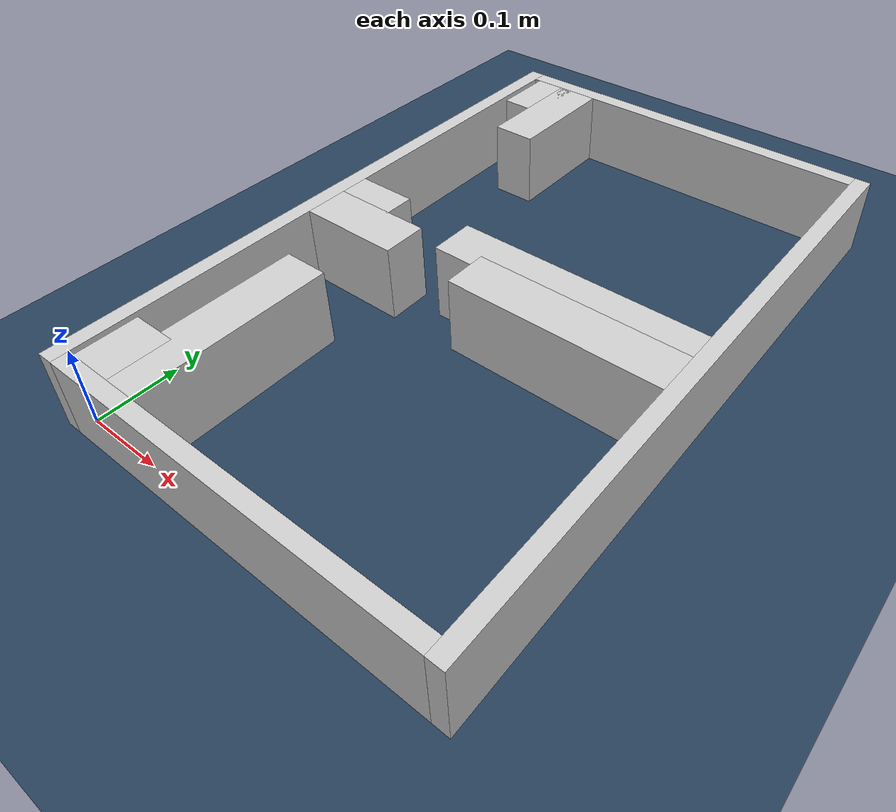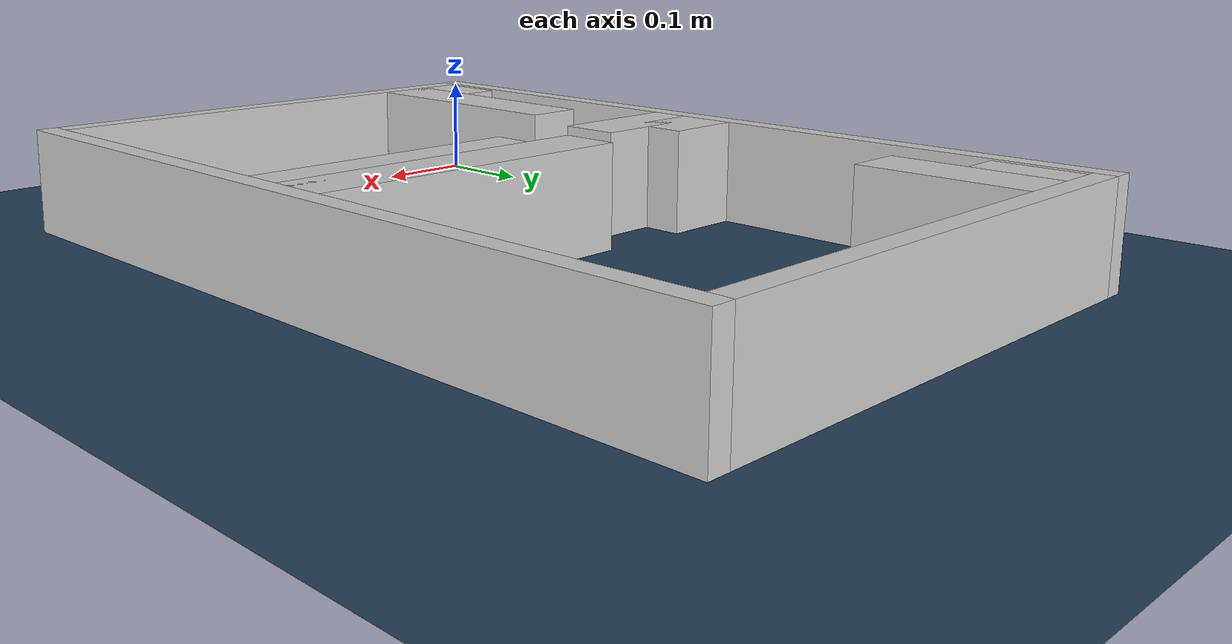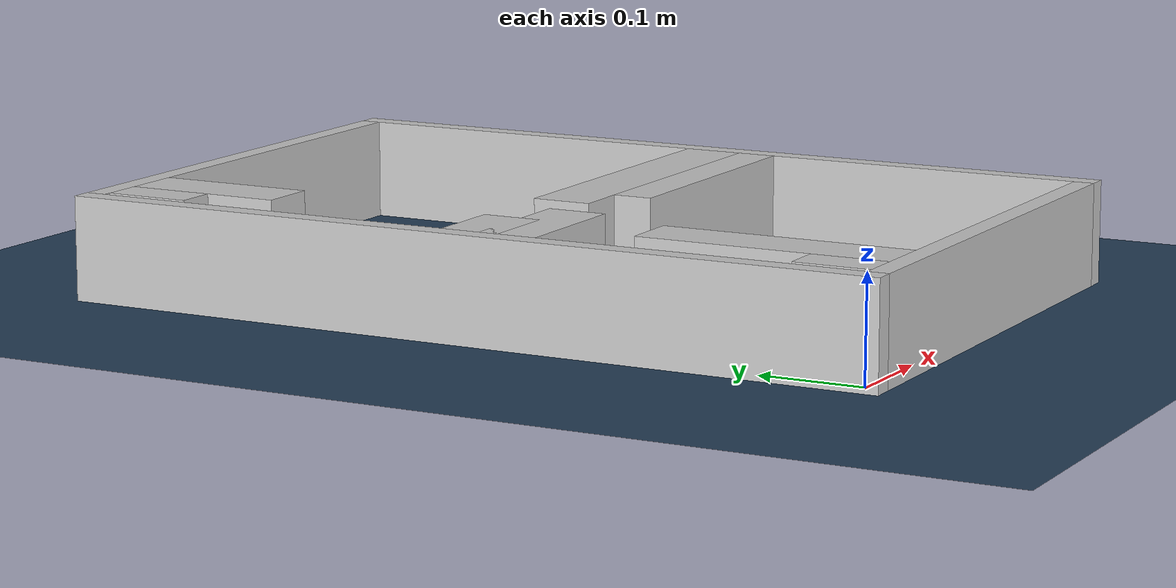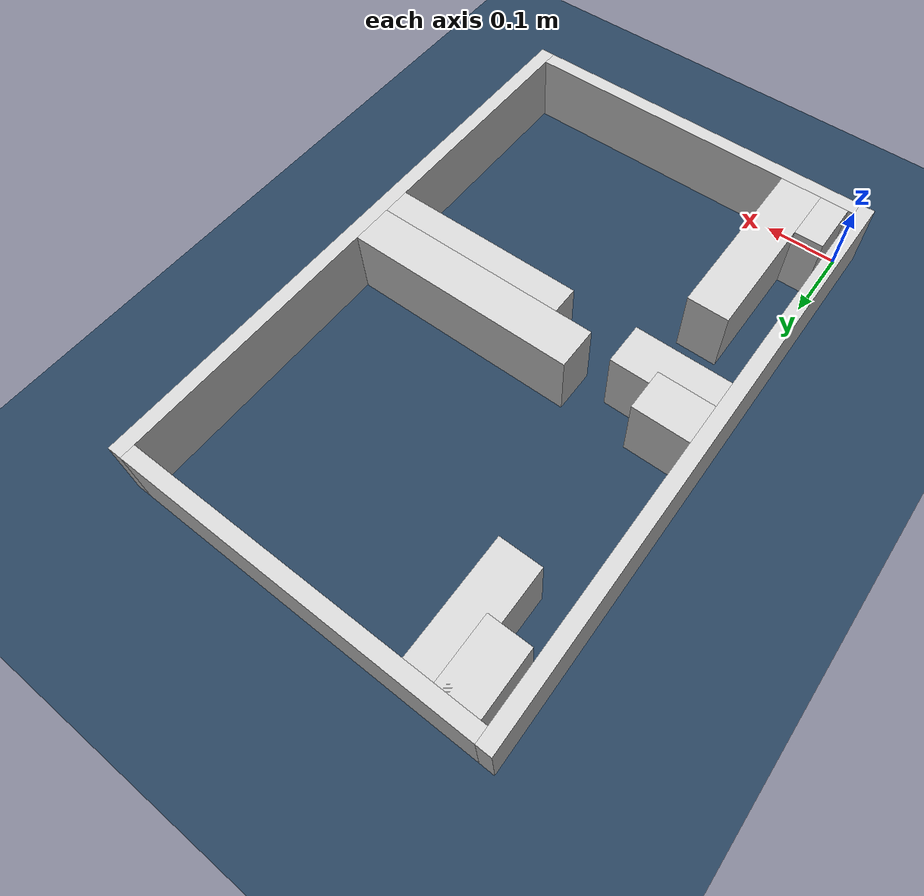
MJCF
<?xml version="1.0" ?>
<mujoco model="generated_real_template">
  <compiler angle="degree"/>
  <option timestep="0.002" integrator="implicitfast" iterations="100" cone="elliptic"/>
  <default>
    <geom density="1"/>
  </default>
  <asset>
    <texture builtin="gradient" height="3072" rgb1="0.3 0.5 0.7" rgb2="0 0 0" type="skybox" width="512"/>
    <texture builtin="checker" height="300" mark="edge" markrgb="0.8 0.8 0.8" name="groundplane" rgb1="0.2 0.3 0.4" rgb2="0.1 0.2 0.3" type="2d" width="300"/>
    <material name="groundplane" reflectance="0.2" texrepeat="5 5" texture="groundplane" texuniform="true"/>
  </asset>
  <worldbody>
    <light dir="0 0 -1" directional="true" pos="0 0 1.5"/>
    <geom name="floor" type="plane" condim="4" friction="0.5 0.005 0.001" material="groundplane" size="0 0 0.05"/>
    <body name="walls">
      <geom name="wall_boundary_left" type="box" condim="4" friction="1.0 0.005 0.0001" rgba="0.8 0.8 0.8 1" pos="-0.010000 0.387500 0.050000" euler="0 0 0.000000" size="0.010000 0.407500 0.050000"/>
      <geom name="wall_boundary_right" type="box" condim="4" friction="1.0 0.005 0.0001" rgba="0.8 0.8 0.8 1" pos="0.500000 0.387500 0.050000" euler="0 0 0.000000" size="0.010000 0.407500 0.050000"/>
      <geom name="wall_boundary_bottom" type="box" condim="4" friction="1.0 0.005 0.0001" rgba="0.8 0.8 0.8 1" pos="0.245000 -0.010000 0.050000" euler="0 0 0.000000" size="0.245000 0.010000 0.050000"/>
      <geom name="wall_boundary_top" type="box" condim="4" friction="1.0 0.005 0.0001" rgba="0.8 0.8 0.8 1" pos="0.245000 0.785000 0.050000" euler="0 0 0.000000" size="0.245000 0.010000 0.050000"/>
      <geom name="wall_inner_1_1" type="box" condim="4" friction="1.0 0.005 0.0001" rgba="0.8 0.8 0.8 1" pos="0.075642 0.121467 0.050000" euler="0 0 90.000000" size="0.121467 0.028500 0.050000"/>
      <geom name="wall_inner_1_2" type="box" condim="4" friction="1.0 0.005 0.0001" rgba="0.8 0.8 0.8 1" pos="0.075642 0.698003 0.050000" euler="0 0 90.000000" size="0.076997 0.028500 0.050000"/>
      <geom name="wall_inner_2_1" type="box" condim="4" friction="1.0 0.005 0.0001" rgba="0.8 0.8 0.8 1" pos="0.038558 0.382210 0.050000" euler="0 0 0.000000" size="0.038558 0.028500 0.050000"/>
      <geom name="wall_inner_2_2" type="box" condim="4" friction="1.0 0.005 0.0001" rgba="0.8 0.8 0.8 1" pos="0.329728 0.382210 0.050000" euler="0 0 0.000000" size="0.160272 0.028500 0.050000"/>
      <geom name="wall_inner_3_1" type="box" condim="4" friction="1.0 0.005 0.0001" rgba="0.8 0.8 0.8 1" pos="0.036492 0.036668 0.050000" euler="0 0 90.000000" size="0.036668 0.028500 0.050000"/>
      <geom name="wall_inner_3_2" type="box" condim="4" friction="1.0 0.005 0.0001" rgba="0.8 0.8 0.8 1" pos="0.036492 0.733342 0.050000" euler="0 0 90.000000" size="0.041658 0.028500 0.050000"/>
      <geom name="wall_inner_4_1" type="box" condim="4" friction="1.0 0.005 0.0001" rgba="0.8 0.8 0.8 1" pos="0.065346 0.344384 0.050000" euler="0 0 0.000000" size="0.065346 0.028500 0.050000"/>
      <geom name="wall_inner_4_2" type="box" condim="4" friction="1.0 0.005 0.0001" rgba="0.8 0.8 0.8 1" pos="0.355506 0.344384 0.050000" euler="0 0 0.000000" size="0.134494 0.028500 0.050000"/>
    </body>
  </worldbody>
</mujoco>
